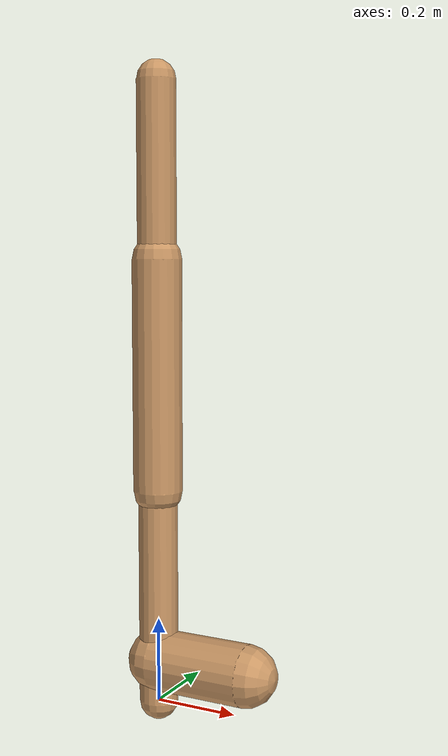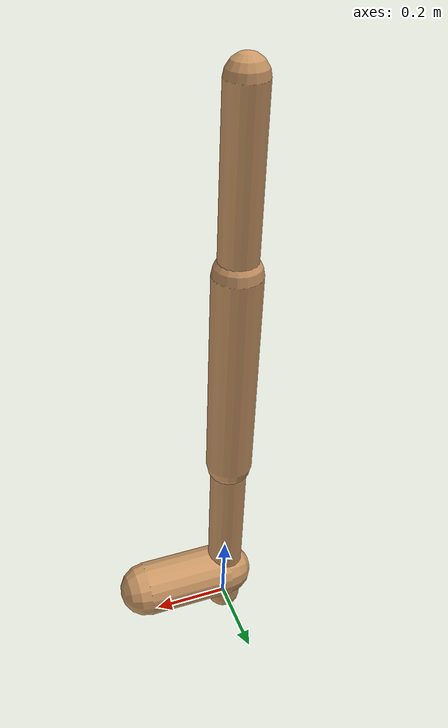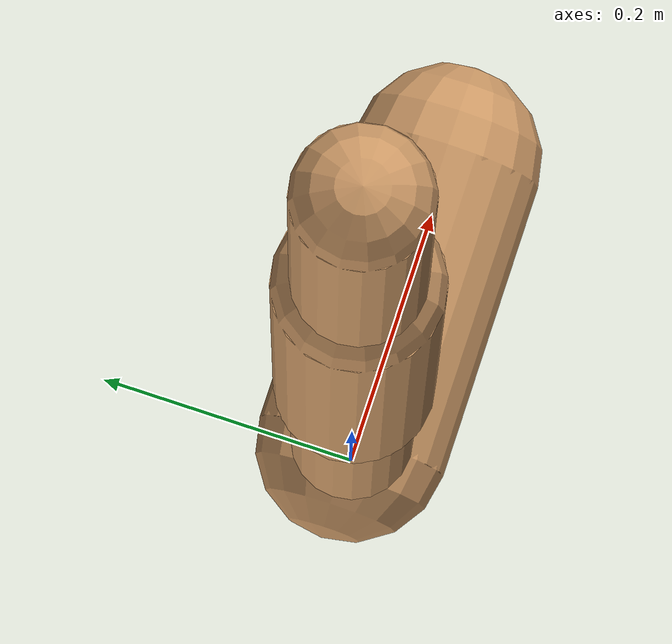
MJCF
<mujoco model="walker2d">
  <compiler angle="degree" coordinate="global" inertiafromgeom="true" />
  <default>
    <joint armature="0.01" damping=".1" limited="true" />
    <geom conaffinity="0" condim="3" contype="1" density="1000" friction="0.8 .1 .1" rgba="0.8 0.6 .4 1" />
  </default>
  <option integrator="RK4" timestep="0.002" />
  <worldbody>

    <body name="torso" pos="0 0 0.18737383855680353">
      <joint armature="0" axis="1 0 0" damping="0" limited="false" name="ignorex" pos="0 0 0" stiffness="0" type="slide" />
      <joint armature="0" axis="0 0 1" damping="0" limited="false" name="ignorez" pos="0 0 0" ref="1.25" stiffness="0" type="slide" />
      <joint armature="0" axis="0 1 0" damping="0" limited="false" name="ignorey" pos="0 0 0" stiffness="0" type="hinge" />
      <geom fromto="0 0 1.45 0 0 1.05" name="torso_geom" size="0.045307353598316204" type="capsule" />
      <body name="thigh">
        <joint axis="0 -1 0" name="thigh_joint" pos="0 0 1.05" range="-150 0" type="hinge" />
        <geom fromto="0.0 0.0 1.05 0.0 0.0 0.5112439712099351" name="thigh_geom" size="0.05779485350041341" type="capsule" />
        <body name="leg" pos="0.0 0.0 -0.08875602879006483">
          <joint axis="0 -1 0" name="leg_joint" pos="0 0 0.6" range="-150 0" type="hinge" />
          <geom fromto="0.0 0.0 0.6 0.0 0.0 0.0013821902332613045" name="leg_geom" size="0.04623588280033073" type="capsule" />
          <body name="foot" pos="0.0 0.0 -0.0986178097667387">
            <joint axis="0 -1 0" name="foot_joint" pos="0 0 0.1" range="-45 45" type="hinge" />
            <geom fromto="-0.0 0.0 0.1 0.2319995195569094 0.0 0.1" name="foot_geom" size="0.07294672948878063" type="capsule" />
          </body>
        </body>
      </body>

      <body name="thigh_left">
        <joint axis="0 -1 0" name="thigh_left_joint" pos="0 0 1.05" range="-150 0" type="hinge" />
        <geom fromto="0.0 0.0 1.05 0.0 0.0 0.5112439712099351" name="thigh_left_geom" rgba=".7 .3 .6 1" size="0.05779485350041341" type="capsule" />
        <body name="leg_left" pos="0.0 0.0 -0.08875602879006483">
          <joint axis="0 -1 0" name="leg_left_joint" pos="0 0 0.6" range="-150 0" type="hinge" />
          <geom fromto="0.0 0.0 0.6 0.0 0.0 0.0013821902332613045" name="leg_left_geom" rgba=".7 .3 .6 1" size="0.04623588280033073" type="capsule" />
          <body name="foot_left" pos="0.0 0.0 -0.0986178097667387">
            <joint axis="0 -1 0" name="foot_left_joint" pos="0 0 0.1" range="-45 45" type="hinge" />
            <geom fromto="-0.0 0.0 0.1 0.2319995195569094 0.0 0.1" name="foot_left_geom" rgba=".7 .3 .6 1" size="0.07294672948878063" type="capsule" />
          </body>
        </body>
      </body>
    </body>
  </worldbody>
  <actuator>

    <motor ctrllimited="true" ctrlrange="-1.0 1.0" gear="100" joint="thigh_joint" />
    <motor ctrllimited="true" ctrlrange="-1.0 1.0" gear="100" joint="leg_joint" />
    <motor ctrllimited="true" ctrlrange="-1.0 1.0" gear="100" joint="foot_joint" />
    <motor ctrllimited="true" ctrlrange="-1.0 1.0" gear="100" joint="thigh_left_joint" />
    <motor ctrllimited="true" ctrlrange="-1.0 1.0" gear="100" joint="leg_left_joint" />
    <motor ctrllimited="true" ctrlrange="-1.0 1.0" gear="100" joint="foot_left_joint" />

  </actuator>
</mujoco>
